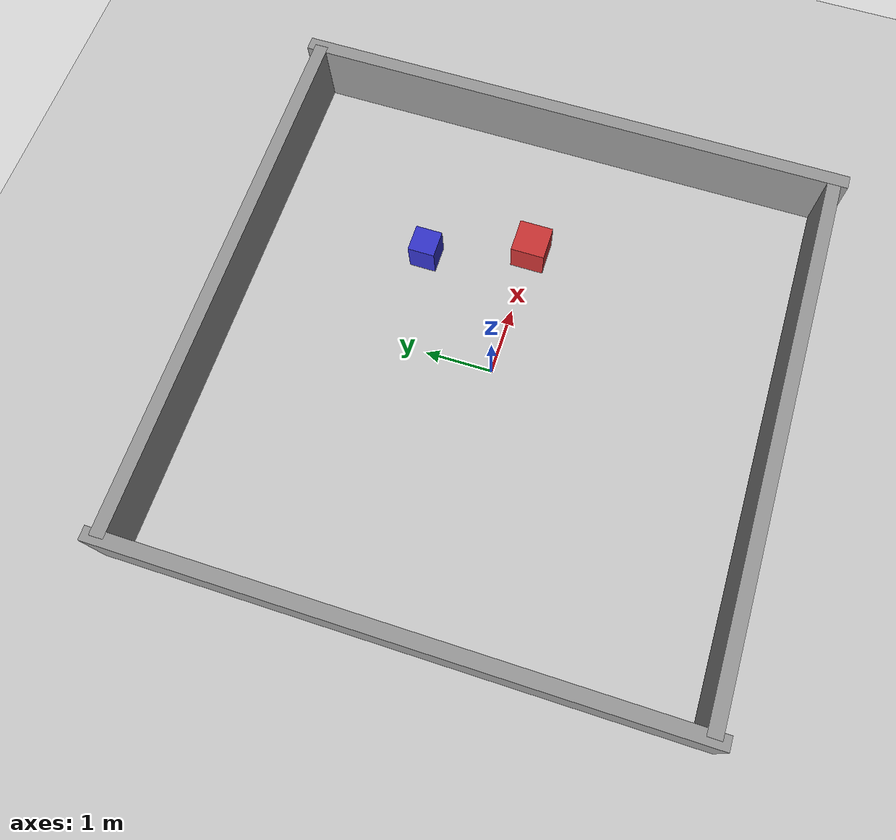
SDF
<?xml version="1.0"?>
<sdf version="1.6">
  <world name="my_world">

    <physics name="default_physics" default="0" type="ode">
      <max_step_size>0.001</max_step_size>
      <real_time_factor>1.0</real_time_factor>
    </physics>

    <!-- Mặt sàn — BẮT BUỘC, thiếu → robot rơi vô tận -->
    <include><uri>model://ground_plane</uri></include>

    <!-- Ánh sáng — BẮT BUỘC, thiếu → Gazebo tối đen -->
    <include><uri>model://sun</uri></include>

    <!-- Tường phía Bắc -->
    <model name="wall_north">
      <pose>4 0 0.5 0 0 0</pose>
      <static>true</static>
      <link name="link">
        <collision name="col"><geometry><box><size>0.2 8.4 1.0</size></box></geometry></collision>
        <visual name="vis">
          <geometry><box><size>0.2 8.4 1.0</size></box></geometry>
          <material><ambient>0.6 0.6 0.6 1</ambient></material>
        </visual>
      </link>
    </model>

    <!-- Tường phía Nam -->
    <model name="wall_south">
      <pose>-4 0 0.5 0 0 0</pose>
      <static>true</static>
      <link name="link">
        <collision name="col"><geometry><box><size>0.2 8.4 1.0</size></box></geometry></collision>
        <visual name="vis">
          <geometry><box><size>0.2 8.4 1.0</size></box></geometry>
          <material><ambient>0.6 0.6 0.6 1</ambient></material>
        </visual>
      </link>
    </model>

    <!-- Tường phía Đông -->
    <model name="wall_east">
      <pose>0 4 0.5 0 0 0</pose>
      <static>true</static>
      <link name="link">
        <collision name="col"><geometry><box><size>8.0 0.2 1.0</size></box></geometry></collision>
        <visual name="vis">
          <geometry><box><size>8.0 0.2 1.0</size></box></geometry>
          <material><ambient>0.6 0.6 0.6 1</ambient></material>
        </visual>
      </link>
    </model>

    <!-- Tường phía Tây -->
    <model name="wall_west">
      <pose>0 -4 0.5 0 0 0</pose>
      <static>true</static>
      <link name="link">
        <collision name="col"><geometry><box><size>8.0 0.2 1.0</size></box></geometry></collision>
        <visual name="vis">
          <geometry><box><size>8.0 0.2 1.0</size></box></geometry>
          <material><ambient>0.6 0.6 0.6 1</ambient></material>
        </visual>
      </link>
    </model>

    <!-- Vật cản 1 (đỏ) — phía trước robot ~2 m -->
    <model name="box_obstacle_1">
      <pose>2.0 0 0.25 0 0 0</pose>
      <static>true</static>
      <link name="link">
        <collision name="col"><geometry><box><size>0.5 0.5 0.5</size></box></geometry></collision>
        <visual name="vis">
          <geometry><box><size>0.5 0.5 0.5</size></box></geometry>
          <material><ambient>0.8 0.2 0.2 1</ambient></material>
        </visual>
      </link>
    </model>

    <!-- Vật cản 2 (xanh) — lệch trái ~1.5 m -->
    <model name="box_obstacle_2">
      <pose>1.5 1.5 0.25 0 0 0</pose>
      <static>true</static>
      <link name="link">
        <collision name="col"><geometry><box><size>0.4 0.4 0.5</size></box></geometry></collision>
        <visual name="vis">
          <geometry><box><size>0.4 0.4 0.5</size></box></geometry>
          <material><ambient>0.2 0.2 0.8 1</ambient></material>
        </visual>
      </link>
    </model>

  </world>
</sdf>
